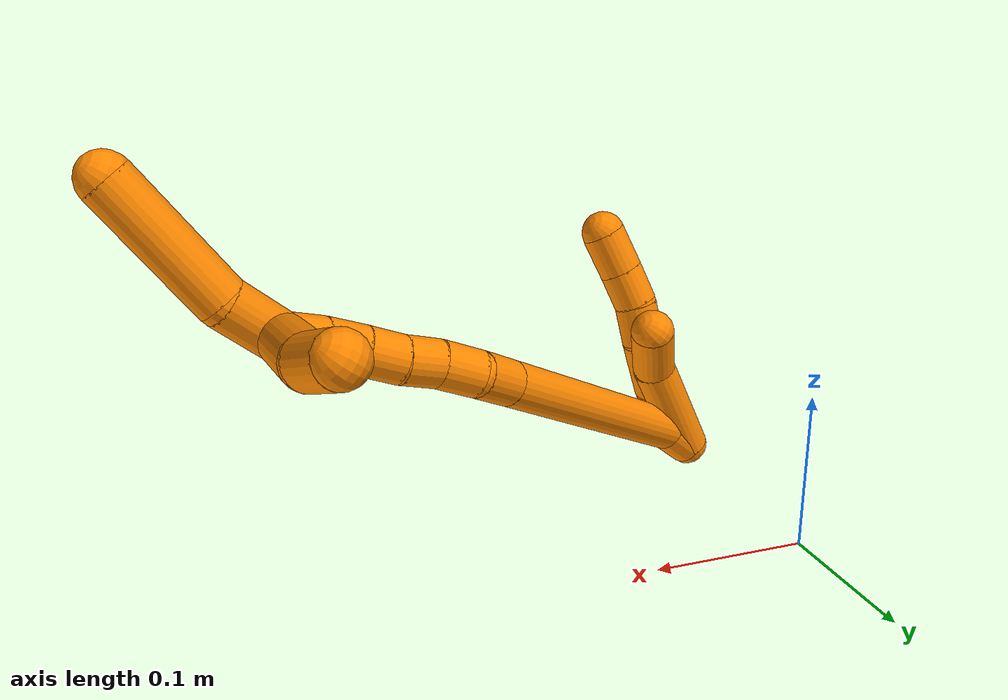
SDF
<sdf version="1.7">
 <world name="default">
  <model name="19">
   <static>0</static>
   <link name="19">
    <collision name="collision-cylinder-e_1_2_8">
     <pose>-0.009402 -0.003019 0.019986 0.149909 -0.435377 -0.033218</pose>
     <geometry><cylinder><radius>0.0125</radius><length>0.044584</length></cylinder></geometry>
     <surface>
      <friction><ode><mu>1.16</mu><mu2>1.16</mu2><slip1>0</slip1><slip2>0</slip2></ode></friction>
      <contact><ode><kp>1e+06</kp><kd>1</kd><max_vel>0</max_vel><min_depth>0.001</min_depth></ode></contact>
     </surface>
    </collision>
    <visual name="visual-cylinder-e_1_2_8">
     <pose>-0.009402 -0.003019 0.019986 0.149909 -0.435377 -0.033218</pose>
     <geometry><cylinder><radius>0.0125</radius><length>0.044584</length></cylinder></geometry>
     <material><ambient>0.996078 0.537255 0 1</ambient></material>
    </visual>
    <collision name="collision-cylinder-e_2_8_9">
     <pose>-0.028096 -0.004185 0.054693 -0.125173 -0.559524 0.036005</pose>
     <geometry><cylinder><radius>0.0125</radius><length>0.035015</length></cylinder></geometry>
     <surface>
      <friction><ode><mu>1.16</mu><mu2>1.16</mu2><slip1>0</slip1><slip2>0</slip2></ode></friction>
      <contact><ode><kp>1e+06</kp><kd>1</kd><max_vel>0</max_vel><min_depth>0.001</min_depth></ode></contact>
     </surface>
    </collision>
    <visual name="visual-cylinder-e_2_8_9">
     <pose>-0.028096 -0.004185 0.054693 -0.125173 -0.559524 0.036005</pose>
     <geometry><cylinder><radius>0.0125</radius><length>0.035015</length></cylinder></geometry>
     <material><ambient>0.996078 0.537255 0 1</ambient></material>
    </visual>
    <collision name="collision-cylinder-e_3_9_10">
     <pose>-0.045235 -0.002479 0.078364 0.016406 -0.719789 -0.006173</pose>
     <geometry><cylinder><radius>0.0125</radius><length>0.023806</length></cylinder></geometry>
     <surface>
      <friction><ode><mu>1.16</mu><mu2>1.16</mu2><slip1>0</slip1><slip2>0</slip2></ode></friction>
      <contact><ode><kp>1e+06</kp><kd>1</kd><max_vel>0</max_vel><min_depth>0.001</min_depth></ode></contact>
     </surface>
    </collision>
    <visual name="visual-cylinder-e_3_9_10">
     <pose>-0.045235 -0.002479 0.078364 0.016406 -0.719789 -0.006173</pose>
     <geometry><cylinder><radius>0.0125</radius><length>0.023806</length></cylinder></geometry>
     <material><ambient>0.996078 0.537255 0 1</ambient></material>
    </visual>
    <collision name="collision-cylinder-e_4_10_11">
     <pose>-0.059093 -0.004604 0.096286 0.216995 -0.579332 -0.064907</pose>
     <geometry><cylinder><radius>0.0125</radius><length>0.02196</length></cylinder></geometry>
     <surface>
      <friction><ode><mu>1.16</mu><mu2>1.16</mu2><slip1>0</slip1><slip2>0</slip2></ode></friction>
      <contact><ode><kp>1e+06</kp><kd>1</kd><max_vel>0</max_vel><min_depth>0.001</min_depth></ode></contact>
     </surface>
    </collision>
    <visual name="visual-cylinder-e_4_10_11">
     <pose>-0.059093 -0.004604 0.096286 0.216995 -0.579332 -0.064907</pose>
     <geometry><cylinder><radius>0.0125</radius><length>0.02196</length></cylinder></geometry>
     <material><ambient>0.996078 0.537255 0 1</ambient></material>
    </visual>
    <collision name="collision-cylinder-e_5_11_6">
     <pose>-0.071409 -0.008557 0.115654 0.187727 -0.537334 -0.051826</pose>
     <geometry><cylinder><radius>0.0125</radius><length>0.024636</length></cylinder></geometry>
     <surface>
      <friction><ode><mu>1.16</mu><mu2>1.16</mu2><slip1>0</slip1><slip2>0</slip2></ode></friction>
      <contact><ode><kp>1e+06</kp><kd>1</kd><max_vel>0</max_vel><min_depth>0.001</min_depth></ode></contact>
     </surface>
    </collision>
    <visual name="visual-cylinder-e_5_11_6">
     <pose>-0.071409 -0.008557 0.115654 0.187727 -0.537334 -0.051826</pose>
     <geometry><cylinder><radius>0.0125</radius><length>0.024636</length></cylinder></geometry>
     <material><ambient>0.996078 0.537255 0 1</ambient></material>
    </visual>
    <collision name="collision-cylinder-e_1_2_12">
     <pose>-0.011814 0.004551 0.031459 -0.143664 -0.355847 0.025877</pose>
     <geometry><cylinder><radius>0.0125</radius><length>0.067822</length></cylinder></geometry>
     <surface>
      <friction><ode><mu>1.16</mu><mu2>1.16</mu2><slip1>0</slip1><slip2>0</slip2></ode></friction>
      <contact><ode><kp>1e+06</kp><kd>1</kd><max_vel>0</max_vel><min_depth>0.001</min_depth></ode></contact>
     </surface>
    </collision>
    <visual name="visual-cylinder-e_1_2_12">
     <pose>-0.011814 0.004551 0.031459 -0.143664 -0.355847 0.025877</pose>
     <geometry><cylinder><radius>0.0125</radius><length>0.067822</length></cylinder></geometry>
     <material><ambient>0.996078 0.537255 0 1</ambient></material>
    </visual>
    <collision name="collision-cylinder-e_2_12_5">
     <pose>-0.029642 0.016109 0.076094 -0.488774 -0.383072 0.096637</pose>
     <geometry><cylinder><radius>0.0125</radius><length>0.032178</length></cylinder></geometry>
     <surface>
      <friction><ode><mu>1.16</mu><mu2>1.16</mu2><slip1>0</slip1><slip2>0</slip2></ode></friction>
      <contact><ode><kp>1e+06</kp><kd>1</kd><max_vel>0</max_vel><min_depth>0.001</min_depth></ode></contact>
     </surface>
    </collision>
    <visual name="visual-cylinder-e_2_12_5">
     <pose>-0.029642 0.016109 0.076094 -0.488774 -0.383072 0.096637</pose>
     <geometry><cylinder><radius>0.0125</radius><length>0.032178</length></cylinder></geometry>
     <material><ambient>0.996078 0.537255 0 1</ambient></material>
    </visual>
    <collision name="collision-cylinder-e_1_2_13">
     <pose>-3.1e-05 -0.00016 0.010935 0.014606 -0.002817 -2.1e-05</pose>
     <geometry><cylinder><radius>0.0125</radius><length>0.021873</length></cylinder></geometry>
     <surface>
      <friction><ode><mu>1.16</mu><mu2>1.16</mu2><slip1>0</slip1><slip2>0</slip2></ode></friction>
      <contact><ode><kp>1e+06</kp><kd>1</kd><max_vel>0</max_vel><min_depth>0.001</min_depth></ode></contact>
     </surface>
    </collision>
    <visual name="visual-cylinder-e_1_2_13">
     <pose>-3.1e-05 -0.00016 0.010935 0.014606 -0.002817 -2.1e-05</pose>
     <geometry><cylinder><radius>0.0125</radius><length>0.021873</length></cylinder></geometry>
     <material><ambient>0.996078 0.537255 0 1</ambient></material>
    </visual>
    <collision name="collision-cylinder-e_2_13_14">
     <pose>0.017784 0.010006 0.093825 -0.142522 0.240734 -0.017267</pose>
     <geometry><cylinder><radius>0.0125</radius><length>0.149699</length></cylinder></geometry>
     <surface>
      <friction><ode><mu>1.16</mu><mu2>1.16</mu2><slip1>0</slip1><slip2>0</slip2></ode></friction>
      <contact><ode><kp>1e+06</kp><kd>1</kd><max_vel>0</max_vel><min_depth>0.001</min_depth></ode></contact>
     </surface>
    </collision>
    <visual name="visual-cylinder-e_2_13_14">
     <pose>0.017784 0.010006 0.093825 -0.142522 0.240734 -0.017267</pose>
     <geometry><cylinder><radius>0.0125</radius><length>0.149699</length></cylinder></geometry>
     <material><ambient>0.996078 0.537255 0 1</ambient></material>
    </visual>
    <collision name="collision-cylinder-e_3_14_15">
     <pose>0.038605 0.022542 0.177541 -0.185812 0.243737 -0.022822</pose>
     <geometry><cylinder><radius>0.0125</radius><length>0.024665</length></cylinder></geometry>
     <surface>
      <friction><ode><mu>1.16</mu><mu2>1.16</mu2><slip1>0</slip1><slip2>0</slip2></ode></friction>
      <contact><ode><kp>1e+06</kp><kd>1</kd><max_vel>0</max_vel><min_depth>0.001</min_depth></ode></contact>
     </surface>
    </collision>
    <visual name="visual-cylinder-e_3_14_15">
     <pose>0.038605 0.022542 0.177541 -0.185812 0.243737 -0.022822</pose>
     <geometry><cylinder><radius>0.0125</radius><length>0.024665</length></cylinder></geometry>
     <material><ambient>0.996078 0.537255 0 1</ambient></material>
    </visual>
    <collision name="collision-cylinder-e_4_15_16">
     <pose>0.044503 0.022949 0.200306 0.162448 0.256303 0.020978</pose>
     <geometry><cylinder><radius>0.0125</radius><length>0.023053</length></cylinder></geometry>
     <surface>
      <friction><ode><mu>1.16</mu><mu2>1.16</mu2><slip1>0</slip1><slip2>0</slip2></ode></friction>
      <contact><ode><kp>1e+06</kp><kd>1</kd><max_vel>0</max_vel><min_depth>0.001</min_depth></ode></contact>
     </surface>
    </collision>
    <visual name="visual-cylinder-e_4_15_16">
     <pose>0.044503 0.022949 0.200306 0.162448 0.256303 0.020978</pose>
     <geometry><cylinder><radius>0.0125</radius><length>0.023053</length></cylinder></geometry>
     <material><ambient>0.996078 0.537255 0 1</ambient></material>
    </visual>
    <collision name="collision-cylinder-e_5_16_17">
     <pose>0.051221 0.020118 0.220547 0.110823 0.38774 0.02178</pose>
     <geometry><cylinder><radius>0.0125</radius><length>0.020079</length></cylinder></geometry>
     <surface>
      <friction><ode><mu>1.16</mu><mu2>1.16</mu2><slip1>0</slip1><slip2>0</slip2></ode></friction>
      <contact><ode><kp>1e+06</kp><kd>1</kd><max_vel>0</max_vel><min_depth>0.001</min_depth></ode></contact>
     </surface>
    </collision>
    <visual name="visual-cylinder-e_5_16_17">
     <pose>0.051221 0.020118 0.220547 0.110823 0.38774 0.02178</pose>
     <geometry><cylinder><radius>0.0125</radius><length>0.020079</length></cylinder></geometry>
     <material><ambient>0.996078 0.537255 0 1</ambient></material>
    </visual>
    <collision name="collision-cylinder-e_6_17_18">
     <pose>0.05767 0.017461 0.239371 0.168359 0.266353 0.022607</pose>
     <geometry><cylinder><radius>0.0125</radius><length>0.02016</length></cylinder></geometry>
     <surface>
      <friction><ode><mu>1.16</mu><mu2>1.16</mu2><slip1>0</slip1><slip2>0</slip2></ode></friction>
      <contact><ode><kp>1e+06</kp><kd>1</kd><max_vel>0</max_vel><min_depth>0.001</min_depth></ode></contact>
     </surface>
    </collision>
    <visual name="visual-cylinder-e_6_17_18">
     <pose>0.05767 0.017461 0.239371 0.168359 0.266353 0.022607</pose>
     <geometry><cylinder><radius>0.0125</radius><length>0.02016</length></cylinder></geometry>
     <material><ambient>0.996078 0.537255 0 1</ambient></material>
    </visual>
    <collision name="collision-cylinder-e_7_18_19">
     <pose>0.063324 0.014112 0.258547 0.177458 0.298778 0.026778</pose>
     <geometry><cylinder><radius>0.0125</radius><length>0.020388</length></cylinder></geometry>
     <surface>
      <friction><ode><mu>1.16</mu><mu2>1.16</mu2><slip1>0</slip1><slip2>0</slip2></ode></friction>
      <contact><ode><kp>1e+06</kp><kd>1</kd><max_vel>0</max_vel><min_depth>0.001</min_depth></ode></contact>
     </surface>
    </collision>
    <visual name="visual-cylinder-e_7_18_19">
     <pose>0.063324 0.014112 0.258547 0.177458 0.298778 0.026778</pose>
     <geometry><cylinder><radius>0.0125</radius><length>0.020388</length></cylinder></geometry>
     <material><ambient>0.996078 0.537255 0 1</ambient></material>
    </visual>
    <collision name="collision-cylinder-e_8_19_1">
     <pose>0.070225 0.012269 0.277389 0.013266 0.398872 0.002681</pose>
     <geometry><cylinder><radius>0.0125</radius><length>0.020083</length></cylinder></geometry>
     <surface>
      <friction><ode><mu>1.16</mu><mu2>1.16</mu2><slip1>0</slip1><slip2>0</slip2></ode></friction>
      <contact><ode><kp>1e+06</kp><kd>1</kd><max_vel>0</max_vel><min_depth>0.001</min_depth></ode></contact>
     </surface>
    </collision>
    <visual name="visual-cylinder-e_8_19_1">
     <pose>0.070225 0.012269 0.277389 0.013266 0.398872 0.002681</pose>
     <geometry><cylinder><radius>0.0125</radius><length>0.020083</length></cylinder></geometry>
     <material><ambient>0.996078 0.537255 0 1</ambient></material>
    </visual>
    <collision name="collision-cylinder-e_1_1_20">
     <pose>0.080622 0.046212 0.296165 -1.29819 0.181648 -0.137991</pose>
     <geometry><cylinder><radius>0.0125</radius><length>0.071928</length></cylinder></geometry>
     <surface>
      <friction><ode><mu>1.16</mu><mu2>1.16</mu2><slip1>0</slip1><slip2>0</slip2></ode></friction>
      <contact><ode><kp>1e+06</kp><kd>1</kd><max_vel>0</max_vel><min_depth>0.001</min_depth></ode></contact>
     </surface>
    </collision>
    <visual name="visual-cylinder-e_1_1_20">
     <pose>0.080622 0.046212 0.296165 -1.29819 0.181648 -0.137991</pose>
     <geometry><cylinder><radius>0.0125</radius><length>0.071928</length></cylinder></geometry>
     <material><ambient>0.996078 0.537255 0 1</ambient></material>
    </visual>
    <collision name="collision-cylinder-e_2_20_4">
     <pose>0.085579 0.094102 0.307573 -1.43534 -0.10991 0.095969</pose>
     <geometry><cylinder><radius>0.0125</radius><length>0.028072</length></cylinder></geometry>
     <surface>
      <friction><ode><mu>1.16</mu><mu2>1.16</mu2><slip1>0</slip1><slip2>0</slip2></ode></friction>
      <contact><ode><kp>1e+06</kp><kd>1</kd><max_vel>0</max_vel><min_depth>0.001</min_depth></ode></contact>
     </surface>
    </collision>
    <visual name="visual-cylinder-e_2_20_4">
     <pose>0.085579 0.094102 0.307573 -1.43534 -0.10991 0.095969</pose>
     <geometry><cylinder><radius>0.0125</radius><length>0.028072</length></cylinder></geometry>
     <material><ambient>0.996078 0.537255 0 1</ambient></material>
    </visual>
    <collision name="collision-cylinder-e_1_1_21">
     <pose>0.073673 0.011791 0.302901 0.021816 -0.027748 -0.000303</pose>
     <geometry><cylinder><radius>0.0125</radius><length>0.03254</length></cylinder></geometry>
     <surface>
      <friction><ode><mu>1.16</mu><mu2>1.16</mu2><slip1>0</slip1><slip2>0</slip2></ode></friction>
      <contact><ode><kp>1e+06</kp><kd>1</kd><max_vel>0</max_vel><min_depth>0.001</min_depth></ode></contact>
     </surface>
    </collision>
    <visual name="visual-cylinder-e_1_1_21">
     <pose>0.073673 0.011791 0.302901 0.021816 -0.027748 -0.000303</pose>
     <geometry><cylinder><radius>0.0125</radius><length>0.03254</length></cylinder></geometry>
     <material><ambient>0.996078 0.537255 0 1</ambient></material>
    </visual>
    <collision name="collision-cylinder-e_2_21_3">
     <pose>0.062783 0.004986 0.35058 0.202511 -0.314636 -0.032232</pose>
     <geometry><cylinder><radius>0.0125</radius><length>0.06746</length></cylinder></geometry>
     <surface>
      <friction><ode><mu>1.16</mu><mu2>1.16</mu2><slip1>0</slip1><slip2>0</slip2></ode></friction>
      <contact><ode><kp>1e+06</kp><kd>1</kd><max_vel>0</max_vel><min_depth>0.001</min_depth></ode></contact>
     </surface>
    </collision>
    <visual name="visual-cylinder-e_2_21_3">
     <pose>0.062783 0.004986 0.35058 0.202511 -0.314636 -0.032232</pose>
     <geometry><cylinder><radius>0.0125</radius><length>0.06746</length></cylinder></geometry>
     <material><ambient>0.996078 0.537255 0 1</ambient></material>
    </visual>
    <collision name="collision-sphere-3">
     <pose>0.052345 -0.001465 0.381998 0 -0 0</pose>
     <geometry><sphere><radius>0.0125</radius></sphere></geometry>
     <surface>
      <friction><ode><mu>1.16</mu><mu2>1.16</mu2><slip1>0</slip1><slip2>0</slip2></ode></friction>
      <contact><ode><kp>1e+06</kp><kd>1</kd><max_vel>0</max_vel><min_depth>0.001</min_depth></ode></contact>
     </surface>
    </collision>
    <visual name="visual-sphere-3">
     <pose>0.052345 -0.001465 0.381998 0 -0 0</pose>
     <geometry><sphere><radius>0.0125</radius></sphere></geometry>
     <material><ambient>0.996078 0.537255 0 1</ambient></material>
    </visual>
    <collision name="collision-sphere-21">
     <pose>0.073222 0.011437 0.319161 0 -0 0</pose>
     <geometry><sphere><radius>0.0125</radius></sphere></geometry>
     <surface>
      <friction><ode><mu>1.16</mu><mu2>1.16</mu2><slip1>0</slip1><slip2>0</slip2></ode></friction>
      <contact><ode><kp>1e+06</kp><kd>1</kd><max_vel>0</max_vel><min_depth>0.001</min_depth></ode></contact>
     </surface>
    </collision>
    <visual name="visual-sphere-21">
     <pose>0.073222 0.011437 0.319161 0 -0 0</pose>
     <geometry><sphere><radius>0.0125</radius></sphere></geometry>
     <material><ambient>0.996078 0.537255 0 1</ambient></material>
    </visual>
    <collision name="collision-sphere-4">
     <pose>0.084039 0.107925 0.309457 0 -0 0</pose>
     <geometry><sphere><radius>0.0125</radius></sphere></geometry>
     <surface>
      <friction><ode><mu>1.16</mu><mu2>1.16</mu2><slip1>0</slip1><slip2>0</slip2></ode></friction>
      <contact><ode><kp>1e+06</kp><kd>1</kd><max_vel>0</max_vel><min_depth>0.001</min_depth></ode></contact>
     </surface>
    </collision>
    <visual name="visual-sphere-4">
     <pose>0.084039 0.107925 0.309457 0 -0 0</pose>
     <geometry><sphere><radius>0.0125</radius></sphere></geometry>
     <material><ambient>0.996078 0.537255 0 1</ambient></material>
    </visual>
    <collision name="collision-sphere-20">
     <pose>0.087118 0.080278 0.305689 0 -0 0</pose>
     <geometry><sphere><radius>0.0125</radius></sphere></geometry>
     <surface>
      <friction><ode><mu>1.16</mu><mu2>1.16</mu2><slip1>0</slip1><slip2>0</slip2></ode></friction>
      <contact><ode><kp>1e+06</kp><kd>1</kd><max_vel>0</max_vel><min_depth>0.001</min_depth></ode></contact>
     </surface>
    </collision>
    <visual name="visual-sphere-20">
     <pose>0.087118 0.080278 0.305689 0 -0 0</pose>
     <geometry><sphere><radius>0.0125</radius></sphere></geometry>
     <material><ambient>0.996078 0.537255 0 1</ambient></material>
    </visual>
    <collision name="collision-sphere-6">
     <pose>-0.077714 -0.010532 0.12605 0 -0 0</pose>
     <geometry><sphere><radius>0.0125</radius></sphere></geometry>
     <surface>
      <friction><ode><mu>1.16</mu><mu2>1.16</mu2><slip1>0</slip1><slip2>0</slip2></ode></friction>
      <contact><ode><kp>1e+06</kp><kd>1</kd><max_vel>0</max_vel><min_depth>0.001</min_depth></ode></contact>
     </surface>
    </collision>
    <visual name="visual-sphere-6">
     <pose>-0.077714 -0.010532 0.12605 0 -0 0</pose>
     <geometry><sphere><radius>0.0125</radius></sphere></geometry>
     <material><ambient>0.996078 0.537255 0 1</ambient></material>
    </visual>
    <collision name="collision-sphere-11">
     <pose>-0.065104 -0.006583 0.105258 0 -0 0</pose>
     <geometry><sphere><radius>0.0125</radius></sphere></geometry>
     <surface>
      <friction><ode><mu>1.16</mu><mu2>1.16</mu2><slip1>0</slip1><slip2>0</slip2></ode></friction>
      <contact><ode><kp>1e+06</kp><kd>1</kd><max_vel>0</max_vel><min_depth>0.001</min_depth></ode></contact>
     </surface>
    </collision>
    <visual name="visual-sphere-11">
     <pose>-0.065104 -0.006583 0.105258 0 -0 0</pose>
     <geometry><sphere><radius>0.0125</radius></sphere></geometry>
     <material><ambient>0.996078 0.537255 0 1</ambient></material>
    </visual>
    <collision name="collision-sphere-10">
     <pose>-0.053082 -0.002626 0.087313 0 -0 0</pose>
     <geometry><sphere><radius>0.0125</radius></sphere></geometry>
     <surface>
      <friction><ode><mu>1.16</mu><mu2>1.16</mu2><slip1>0</slip1><slip2>0</slip2></ode></friction>
      <contact><ode><kp>1e+06</kp><kd>1</kd><max_vel>0</max_vel><min_depth>0.001</min_depth></ode></contact>
     </surface>
    </collision>
    <visual name="visual-sphere-10">
     <pose>-0.053082 -0.002626 0.087313 0 -0 0</pose>
     <geometry><sphere><radius>0.0125</radius></sphere></geometry>
     <material><ambient>0.996078 0.537255 0 1</ambient></material>
    </visual>
    <collision name="collision-sphere-9">
     <pose>-0.037389 -0.002332 0.069414 0 -0 0</pose>
     <geometry><sphere><radius>0.0125</radius></sphere></geometry>
     <surface>
      <friction><ode><mu>1.16</mu><mu2>1.16</mu2><slip1>0</slip1><slip2>0</slip2></ode></friction>
      <contact><ode><kp>1e+06</kp><kd>1</kd><max_vel>0</max_vel><min_depth>0.001</min_depth></ode></contact>
     </surface>
    </collision>
    <visual name="visual-sphere-9">
     <pose>-0.037389 -0.002332 0.069414 0 -0 0</pose>
     <geometry><sphere><radius>0.0125</radius></sphere></geometry>
     <material><ambient>0.996078 0.537255 0 1</ambient></material>
    </visual>
    <collision name="collision-sphere-2">
     <geometry><sphere><radius>0.0125</radius></sphere></geometry>
     <surface>
      <friction><ode><mu>1.16</mu><mu2>1.16</mu2><slip1>0</slip1><slip2>0</slip2></ode></friction>
      <contact><ode><kp>1e+06</kp><kd>1</kd><max_vel>0</max_vel><min_depth>0.001</min_depth></ode></contact>
     </surface>
    </collision>
    <visual name="visual-sphere-2">
     <geometry><sphere><radius>0.0125</radius></sphere></geometry>
     <material><ambient>0.996078 0.537255 0 1</ambient></material>
    </visual>
    <collision name="collision-sphere-19">
     <pose>0.066325 0.012392 0.268136 0 -0 0</pose>
     <geometry><sphere><radius>0.0125</radius></sphere></geometry>
     <surface>
      <friction><ode><mu>1.16</mu><mu2>1.16</mu2><slip1>0</slip1><slip2>0</slip2></ode></friction>
      <contact><ode><kp>1e+06</kp><kd>1</kd><max_vel>0</max_vel><min_depth>0.001</min_depth></ode></contact>
     </surface>
    </collision>
    <visual name="visual-sphere-19">
     <pose>0.066325 0.012392 0.268136 0 -0 0</pose>
     <geometry><sphere><radius>0.0125</radius></sphere></geometry>
     <material><ambient>0.996078 0.537255 0 1</ambient></material>
    </visual>
    <collision name="collision-sphere-8">
     <pose>-0.018803 -0.006037 0.039971 0 -0 0</pose>
     <geometry><sphere><radius>0.0125</radius></sphere></geometry>
     <surface>
      <friction><ode><mu>1.16</mu><mu2>1.16</mu2><slip1>0</slip1><slip2>0</slip2></ode></friction>
      <contact><ode><kp>1e+06</kp><kd>1</kd><max_vel>0</max_vel><min_depth>0.001</min_depth></ode></contact>
     </surface>
    </collision>
    <visual name="visual-sphere-8">
     <pose>-0.018803 -0.006037 0.039971 0 -0 0</pose>
     <geometry><sphere><radius>0.0125</radius></sphere></geometry>
     <material><ambient>0.996078 0.537255 0 1</ambient></material>
    </visual>
    <collision name="collision-sphere-12">
     <pose>-0.023628 0.009102 0.062918 0 -0 0</pose>
     <geometry><sphere><radius>0.0125</radius></sphere></geometry>
     <surface>
      <friction><ode><mu>1.16</mu><mu2>1.16</mu2><slip1>0</slip1><slip2>0</slip2></ode></friction>
      <contact><ode><kp>1e+06</kp><kd>1</kd><max_vel>0</max_vel><min_depth>0.001</min_depth></ode></contact>
     </surface>
    </collision>
    <visual name="visual-sphere-12">
     <pose>-0.023628 0.009102 0.062918 0 -0 0</pose>
     <geometry><sphere><radius>0.0125</radius></sphere></geometry>
     <material><ambient>0.996078 0.537255 0 1</ambient></material>
    </visual>
    <collision name="collision-sphere-5">
     <pose>-0.035655 0.023116 0.089269 0 -0 0</pose>
     <geometry><sphere><radius>0.0125</radius></sphere></geometry>
     <surface>
      <friction><ode><mu>1.16</mu><mu2>1.16</mu2><slip1>0</slip1><slip2>0</slip2></ode></friction>
      <contact><ode><kp>1e+06</kp><kd>1</kd><max_vel>0</max_vel><min_depth>0.001</min_depth></ode></contact>
     </surface>
    </collision>
    <visual name="visual-sphere-5">
     <pose>-0.035655 0.023116 0.089269 0 -0 0</pose>
     <geometry><sphere><radius>0.0125</radius></sphere></geometry>
     <material><ambient>0.996078 0.537255 0 1</ambient></material>
    </visual>
    <collision name="collision-sphere-13">
     <pose>-6.2e-05 -0.000319 0.021871 0 -0 0</pose>
     <geometry><sphere><radius>0.0125</radius></sphere></geometry>
     <surface>
      <friction><ode><mu>1.16</mu><mu2>1.16</mu2><slip1>0</slip1><slip2>0</slip2></ode></friction>
      <contact><ode><kp>1e+06</kp><kd>1</kd><max_vel>0</max_vel><min_depth>0.001</min_depth></ode></contact>
     </surface>
    </collision>
    <visual name="visual-sphere-13">
     <pose>-6.2e-05 -0.000319 0.021871 0 -0 0</pose>
     <geometry><sphere><radius>0.0125</radius></sphere></geometry>
     <material><ambient>0.996078 0.537255 0 1</ambient></material>
    </visual>
    <collision name="collision-sphere-14">
     <pose>0.035629 0.020331 0.165779 0 -0 0</pose>
     <geometry><sphere><radius>0.0125</radius></sphere></geometry>
     <surface>
      <friction><ode><mu>1.16</mu><mu2>1.16</mu2><slip1>0</slip1><slip2>0</slip2></ode></friction>
      <contact><ode><kp>1e+06</kp><kd>1</kd><max_vel>0</max_vel><min_depth>0.001</min_depth></ode></contact>
     </surface>
    </collision>
    <visual name="visual-sphere-14">
     <pose>0.035629 0.020331 0.165779 0 -0 0</pose>
     <geometry><sphere><radius>0.0125</radius></sphere></geometry>
     <material><ambient>0.996078 0.537255 0 1</ambient></material>
    </visual>
    <collision name="collision-sphere-15">
     <pose>0.041581 0.024753 0.189303 0 -0 0</pose>
     <geometry><sphere><radius>0.0125</radius></sphere></geometry>
     <surface>
      <friction><ode><mu>1.16</mu><mu2>1.16</mu2><slip1>0</slip1><slip2>0</slip2></ode></friction>
      <contact><ode><kp>1e+06</kp><kd>1</kd><max_vel>0</max_vel><min_depth>0.001</min_depth></ode></contact>
     </surface>
    </collision>
    <visual name="visual-sphere-15">
     <pose>0.041581 0.024753 0.189303 0 -0 0</pose>
     <geometry><sphere><radius>0.0125</radius></sphere></geometry>
     <material><ambient>0.996078 0.537255 0 1</ambient></material>
    </visual>
    <collision name="collision-sphere-16">
     <pose>0.047425 0.021146 0.21131 0 -0 0</pose>
     <geometry><sphere><radius>0.0125</radius></sphere></geometry>
     <surface>
      <friction><ode><mu>1.16</mu><mu2>1.16</mu2><slip1>0</slip1><slip2>0</slip2></ode></friction>
      <contact><ode><kp>1e+06</kp><kd>1</kd><max_vel>0</max_vel><min_depth>0.001</min_depth></ode></contact>
     </surface>
    </collision>
    <visual name="visual-sphere-16">
     <pose>0.047425 0.021146 0.21131 0 -0 0</pose>
     <geometry><sphere><radius>0.0125</radius></sphere></geometry>
     <material><ambient>0.996078 0.537255 0 1</ambient></material>
    </visual>
    <collision name="collision-sphere-17">
     <pose>0.055017 0.01909 0.229784 0 -0 0</pose>
     <geometry><sphere><radius>0.0125</radius></sphere></geometry>
     <surface>
      <friction><ode><mu>1.16</mu><mu2>1.16</mu2><slip1>0</slip1><slip2>0</slip2></ode></friction>
      <contact><ode><kp>1e+06</kp><kd>1</kd><max_vel>0</max_vel><min_depth>0.001</min_depth></ode></contact>
     </surface>
    </collision>
    <visual name="visual-sphere-17">
     <pose>0.055017 0.01909 0.229784 0 -0 0</pose>
     <geometry><sphere><radius>0.0125</radius></sphere></geometry>
     <material><ambient>0.996078 0.537255 0 1</ambient></material>
    </visual>
    <collision name="collision-sphere-18">
     <pose>0.060324 0.015831 0.248958 0 -0 0</pose>
     <geometry><sphere><radius>0.0125</radius></sphere></geometry>
     <surface>
      <friction><ode><mu>1.16</mu><mu2>1.16</mu2><slip1>0</slip1><slip2>0</slip2></ode></friction>
      <contact><ode><kp>1e+06</kp><kd>1</kd><max_vel>0</max_vel><min_depth>0.001</min_depth></ode></contact>
     </surface>
    </collision>
    <visual name="visual-sphere-18">
     <pose>0.060324 0.015831 0.248958 0 -0 0</pose>
     <geometry><sphere><radius>0.0125</radius></sphere></geometry>
     <material><ambient>0.996078 0.537255 0 1</ambient></material>
    </visual>
    <collision name="collision-sphere-1">
     <pose>0.074125 0.012146 0.286641 0 -0 0</pose>
     <geometry><sphere><radius>0.0125</radius></sphere></geometry>
     <surface>
      <friction><ode><mu>1.16</mu><mu2>1.16</mu2><slip1>0</slip1><slip2>0</slip2></ode></friction>
      <contact><ode><kp>1e+06</kp><kd>1</kd><max_vel>0</max_vel><min_depth>0.001</min_depth></ode></contact>
     </surface>
    </collision>
    <visual name="visual-sphere-1">
     <pose>0.074125 0.012146 0.286641 0 -0 0</pose>
     <geometry><sphere><radius>0.0125</radius></sphere></geometry>
     <material><ambient>0.996078 0.537255 0 1</ambient></material>
    </visual>
    <inertial>
     <pose>0.022766 0.014307 0.161384 0 -0 0</pose>
     <mass>0.75</mass>
     <inertia>
      <ixx>0.00039</ixx>
      <ixy>0</ixy>
      <ixz>0</ixz>
      <iyy>0.000387</iyy>
      <iyz>0</iyz>
      <izz>-7.1e-05</izz>
     </inertia>
    </inertial>
   </link>
   <pose>0.062043 -0.042787 0.061947 0.212732 0.872303 0.518101</pose>
  </model>
 </world>
</sdf>
